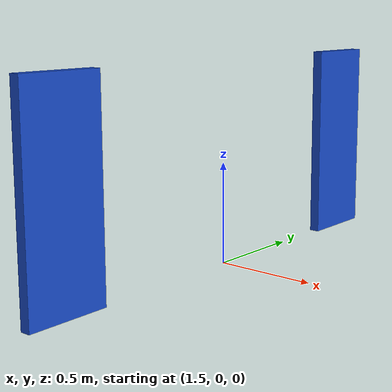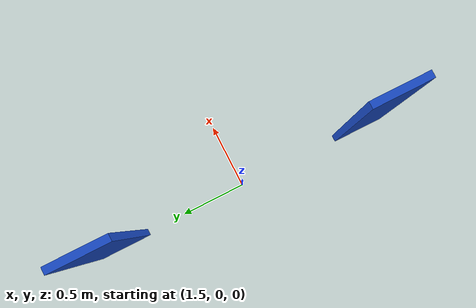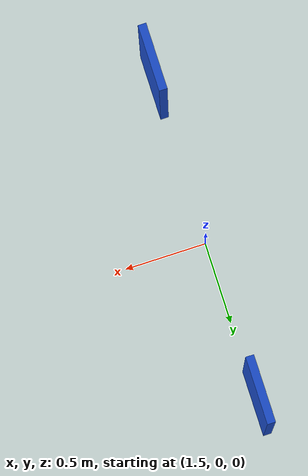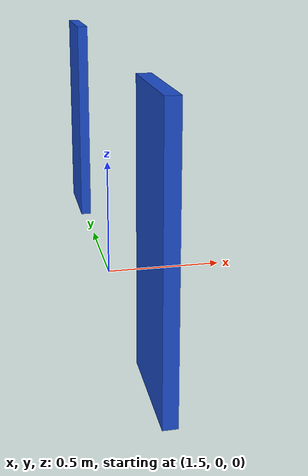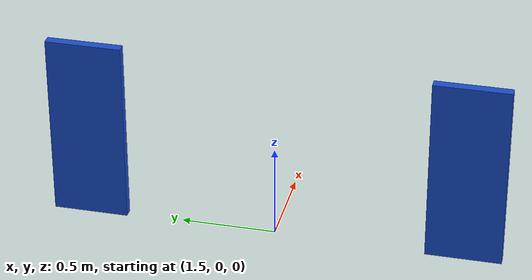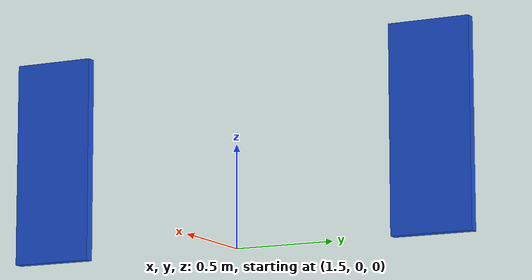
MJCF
<mujoco>
  <asset>
    <material name="wall_mat" rgba="0.1 0.3 0.8 1" reflectance="0.5" />
  </asset>

  <worldbody>
    <body name="wall1_body" pos="1.5 -1 0.5">
      <geom name="wall1_geom"
            type="box"
            size="0.025 0.2 0.5"
            material="wall_mat"
            friction="0.5 0.005 0.0001"
            contype="1"
            conaffinity="1"/>
    </body>

    <body name="wall2_body" pos="1.5 1 0.5">
      <geom name="wall2_geom"
            type="box"
            size="0.025 0.2 0.5"
            material="wall_mat"
            friction="0.5 0.005 0.0001"
            contype="1"
            conaffinity="1"/>
    </body>
  </worldbody>
</mujoco>
